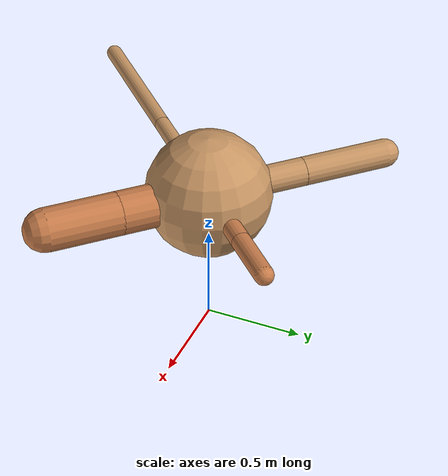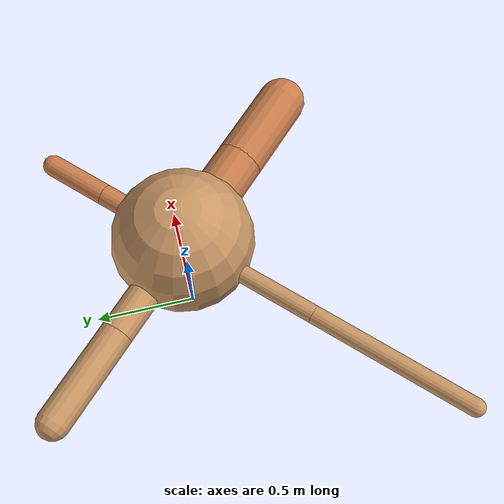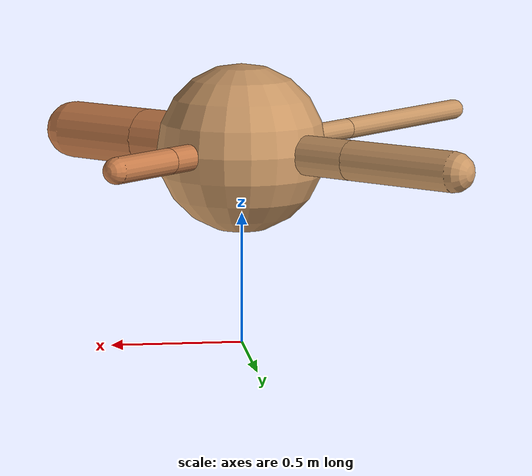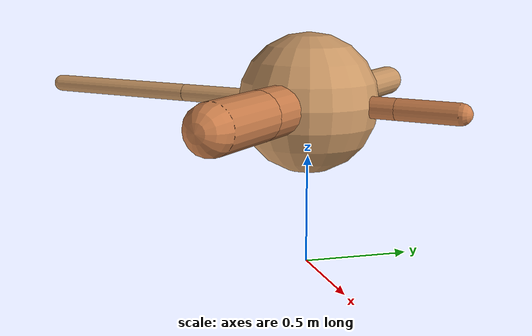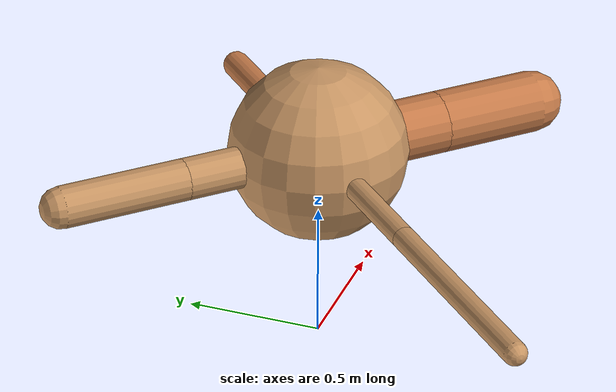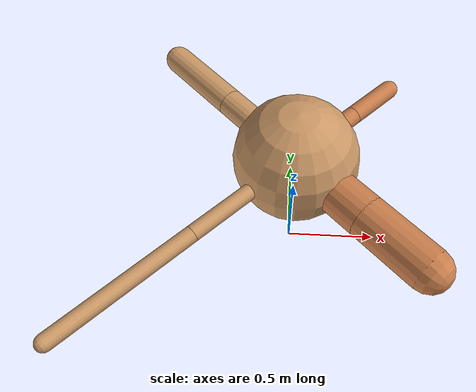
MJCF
<?xml version="1.0" ?>
<mujoco model="ant">

	<compiler angle="degree" coordinate="local" inertiafromgeom="true"/>

	<option integrator="RK4" timestep="0.01"/>

	<custom>

		<numeric data="0.0 0.0 0.55 1.0 0.0 0.0 0.0 0.0 1.0 0.0 -1.0 0.0 -1.0 0.0 1.0" name="init_qpos"/>

	</custom>

	<default>

		<joint armature="1" damping="1" limited="true"/>

		<geom conaffinity="0" condim="3" density="5.0" friction="1.5 0.1 0.1" margin="0.01" rgba="0.8 0.6 0.4 1"/>

	</default>

	<worldbody>

		<body name="torso" pos="0 0 0.75">

			<geom name="torso_geom" pos="0 0 0" size="0.32137545703006365" type="sphere"/>

			<!--joint armature="0" damping="0" limited="false" margin="0.01" name="root" pos="0 0 0" type="free"/-->

			<body name="front_left_leg" pos="0 0 0">

				<geom fromto="0 0 0 0.2 0.2 0" name="aux_1_geom" size="0.04923967935587765" type="capsule" rgba=".8 .5 .3 1"/>

				<body name="aux_1" pos="0.2 0.2 0">

					<joint axis="0 0 1" name="hip_1" pos="0.0 0.0 0.0" range="-40 40" type="hinge"/>

					<geom fromto="0 0 0 0.10139997640258447 0.10139997640258447 0" name="left_leg_geom" size="0.04923967935587765" type="capsule" rgba=".8 .5 .3 1"/>

					<body pos="0.10139997640258447 0.10139997640258447 0" name="front_left_foot">

						<joint axis="-1 1 0" name="ankle_1" pos="0.0 0.0 0.0" range="30 100" type="hinge"/>

						<geom fromto="0 0 0 0.20279995280516894 0.20279995280516894 0" name="left_ankle_geom" size="0.04923967935587765" type="capsule" rgba=".8 .5 .3 1"/>

					</body>

				</body>

			</body>

			<body name="front_right_leg" pos="0 0 0">

				<geom fromto="0 0 0 -0.2 0.2 0" name="aux_2_geom" size="0.07427320506351197" type="capsule"/>

				<body name="aux_2" pos="-0.2 0.2 0">

					<joint axis="0 0 1" name="hip_2" pos="0.0 0.0 0.0" range="-40 40" type="hinge"/>

					<geom fromto="0 0 0 -0.16056481868096623 0.16056481868096623 0" name="right_leg_geom" size="0.07427320506351197" type="capsule"/>

					<body pos="-0.16056481868096623 0.16056481868096623 0" name="front_right_foot">

						<joint axis="1 1 0" name="ankle_2" pos="0.0 0.0 0.0" range="-100 -30" type="hinge"/>

						<geom fromto="0 0 0 -0.32112963736193245 0.32112963736193245 0" name="right_ankle_geom" size="0.07427320506351197" type="capsule"/>

					</body>

				</body>

			</body>

			<body name="left_back_leg" pos="0 0 0">

				<geom fromto="0 0 0 -0.2 -0.2 0" name="aux_3_geom" size="0.04111286833533693" type="capsule"/>

				<body name="aux_3" pos="-0.2 -0.2 0">

					<joint axis="0 0 1" name="hip_3" pos="0.0 0.0 0.0" range="-40 40" type="hinge"/>

					<geom fromto="0 0 0 -0.2733728861819879 -0.2733728861819879 0" name="back_leg_geom" size="0.04111286833533693" type="capsule"/>

					<body pos="-0.2733728861819879 -0.2733728861819879 0" name="left_back_foot">

						<joint axis="-1 1 0" name="ankle_3" pos="0.0 0.0 0.0" range="-100 -30" type="hinge"/>

						<geom fromto="0 0 0 -0.5467457723639758 -0.5467457723639758 0" name="third_ankle_geom" size="0.04111286833533693" type="capsule"/>

					</body>

				</body>

			</body>

			<body name="right_back_leg" pos="0 0 0">

				<geom fromto="0 0 0 0.2 -0.2 0" name="aux_4_geom" size="0.11122198641959102" type="capsule" rgba=".8 .5 .3 1"/>

				<body name="aux_4" pos="0.2 -0.2 0">

					<joint axis="0 0 1" name="hip_4" pos="0.0 0.0 0.0" range="-40 40" type="hinge"/>

					<geom fromto="0 0 0 0.1334314961417323 -0.1334314961417323 0" name="rightback_leg_geom" size="0.11122198641959102" type="capsule" rgba=".8 .5 .3 1"/>

					<body pos="0.1334314961417323 -0.1334314961417323 0" name="right_back_foot">

						<joint axis="1 1 0" name="ankle_4" pos="0.0 0.0 0.0" range="30 100" type="hinge"/>

						<geom fromto="0 0 0 0.2668629922834646 -0.2668629922834646 0" name="fourth_ankle_geom" size="0.11122198641959102" type="capsule" rgba=".8 .5 .3 1"/>

					</body>

				</body>

			</body>

		</body>

	</worldbody>

	<actuator>

		<motor ctrllimited="true" ctrlrange="-1.0 1.0" joint="hip_4" gear="150"/>

		<motor ctrllimited="true" ctrlrange="-1.0 1.0" joint="ankle_4" gear="150"/>

		<motor ctrllimited="true" ctrlrange="-1.0 1.0" joint="hip_1" gear="150"/>

		<motor ctrllimited="true" ctrlrange="-1.0 1.0" joint="ankle_1" gear="150"/>

		<motor ctrllimited="true" ctrlrange="-1.0 1.0" joint="hip_2" gear="150"/>

		<motor ctrllimited="true" ctrlrange="-1.0 1.0" joint="ankle_2" gear="150"/>

		<motor ctrllimited="true" ctrlrange="-1.0 1.0" joint="hip_3" gear="150"/>

		<motor ctrllimited="true" ctrlrange="-1.0 1.0" joint="ankle_3" gear="150"/>

	</actuator>

</mujoco>
